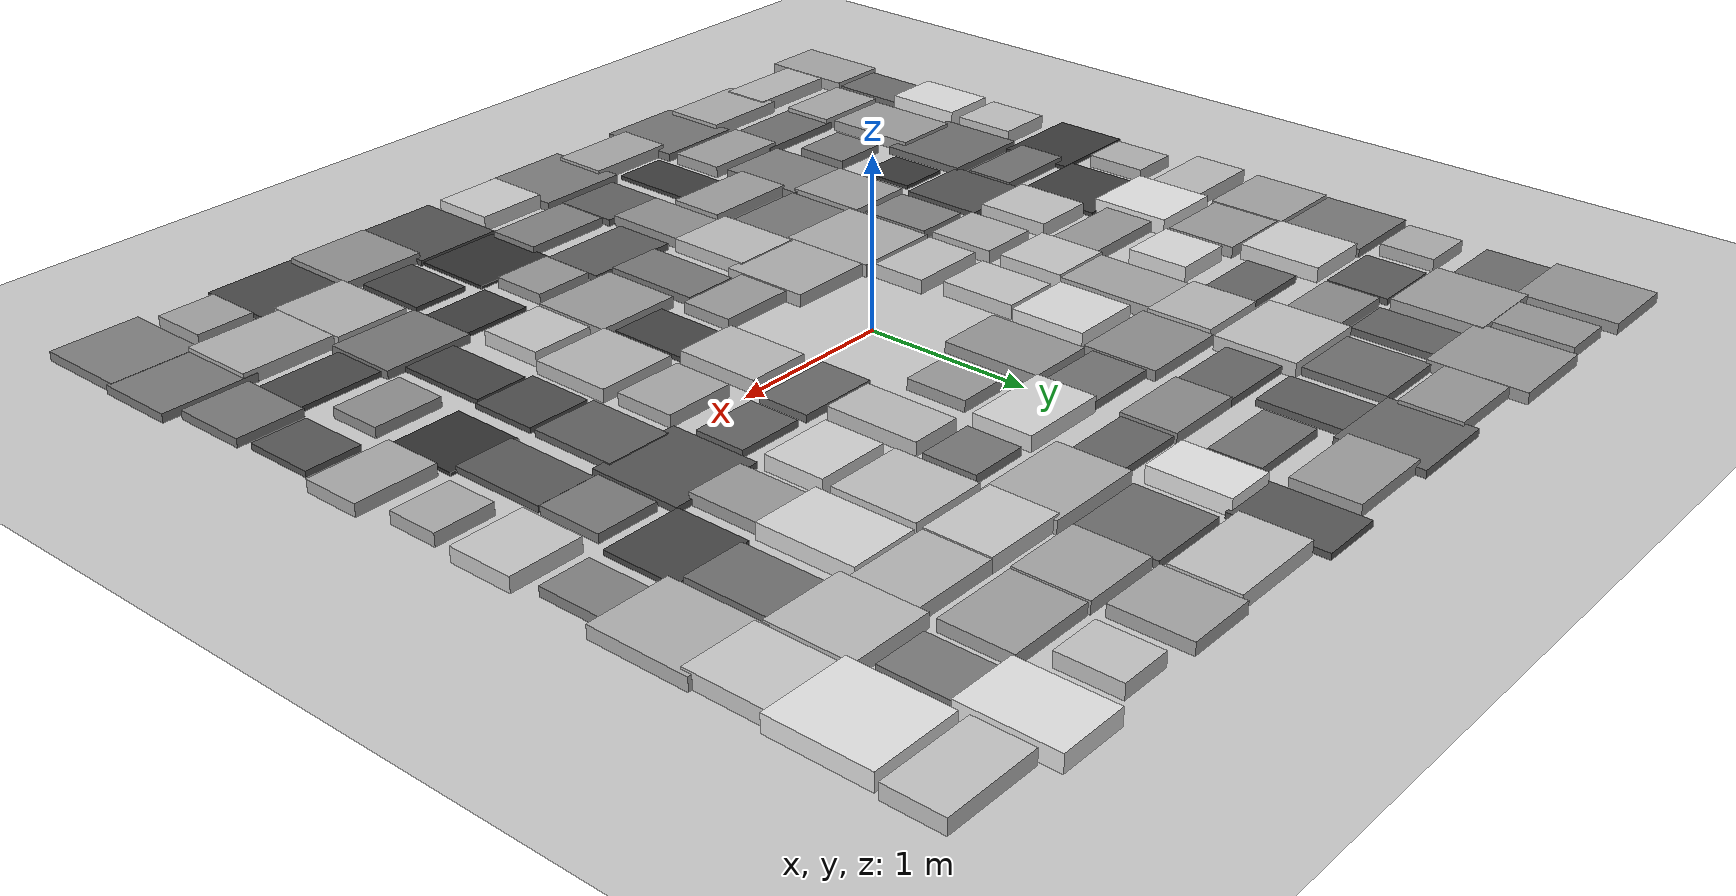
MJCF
<mujoco model="terrain_scene">
  <compiler angle="radian" coordinate="local" inertiafromgeom="true" />
  <option timestep="0.002" gravity="0.0 0.0 -9.81" iterations="50" solver="Newton" />
  <visual>
    <global offwidth="1920" offheight="1080" />
    <quality shadowsize="4096" />
    <headlight ambient="0.4 0.4 0.4" diffuse="0.6 0.6 0.6" />
  </visual>
  <asset>
    <texture name="grid_texture" type="2d" builtin="checker" rgb1="0.9 0.9 0.9" rgb2="0.7 0.7 0.7" width="512" height="512" />
    <material name="grid_material" texture="grid_texture" texrepeat="10 10" reflectance="0.1" />
  </asset>
  <worldbody>
    <geom name="ground" type="plane" size="6.0 6.0 0.1" pos="0 0 0" rgba="0.8 0.8 0.8 1.0" friction="1.0 0.005 0.0001" />
    <geom name="box_0" type="box" size="0.1894 0.2905 0.0362" pos="-2.7500 -2.7500 0.0362" rgba="0.659 0.659 0.659 1.000" friction="1.0 0.005 0.0001" />
    <geom name="box_1" type="box" size="0.1684 0.2747 0.0232" pos="-2.7500 -2.2500 0.0232" rgba="0.430 0.430 0.430 1.000" friction="1.0 0.005 0.0001" />
    <geom name="box_2" type="box" size="0.1769 0.2399 0.0486" pos="-2.7500 -1.7500 0.0486" rgba="0.876 0.876 0.876 1.000" friction="1.0 0.005 0.0001" />
    <geom name="box_3" type="box" size="0.1795 0.1965 0.0420" pos="-2.7500 -1.2500 0.0420" rgba="0.760 0.760 0.760 1.000" friction="1.0 0.005 0.0001" />
    <geom name="box_4" type="box" size="0.2958 0.2251 0.0119" pos="-2.7500 -0.7500 0.0119" rgba="0.234 0.234 0.234 1.000" friction="1.0 0.005 0.0001" />
    <geom name="box_5" type="box" size="0.1521 0.1844 0.0387" pos="-2.7500 -0.2500 0.0387" rgba="0.702 0.702 0.702 1.000" friction="1.0 0.005 0.0001" />
    <geom name="box_6" type="box" size="0.2516 0.1683 0.0408" pos="-2.7500 0.2500 0.0408" rgba="0.740 0.740 0.740 1.000" friction="1.0 0.005 0.0001" />
    <geom name="box_7" type="box" size="0.2541 0.2372 0.0355" pos="-2.7500 0.7500 0.0355" rgba="0.646 0.646 0.646 1.000" friction="1.0 0.005 0.0001" />
    <geom name="box_8" type="box" size="0.2706 0.2573 0.0258" pos="-2.7500 1.2500 0.0258" rgba="0.476 0.476 0.476 1.000" friction="1.0 0.005 0.0001" />
    <geom name="box_9" type="box" size="0.1697 0.1686 0.0376" pos="-2.7500 1.7500 0.0376" rgba="0.682 0.682 0.682 1.000" friction="1.0 0.005 0.0001" />
    <geom name="box_10" type="box" size="0.2096 0.1951 0.0231" pos="-2.7500 2.2500 0.0231" rgba="0.430 0.430 0.430 1.000" friction="1.0 0.005 0.0001" />
    <geom name="box_11" type="box" size="0.2494 0.2933 0.0322" pos="-2.7500 2.7500 0.0322" rgba="0.589 0.589 0.589 1.000" friction="1.0 0.005 0.0001" />
    <geom name="box_12" type="box" size="0.2887 0.1537 0.0402" pos="-2.2500 -2.7500 0.0402" rgba="0.729 0.729 0.729 1.000" friction="1.0 0.005 0.0001" />
    <geom name="box_13" type="box" size="0.2451 0.1659 0.0368" pos="-2.2500 -2.2500 0.0368" rgba="0.669 0.669 0.669 1.000" friction="1.0 0.005 0.0001" />
    <geom name="box_14" type="box" size="0.2129 0.2949 0.0343" pos="-2.2500 -1.7500 0.0343" rgba="0.625 0.625 0.625 1.000" friction="1.0 0.005 0.0001" />
    <geom name="box_15" type="box" size="0.2900 0.2707 0.0237" pos="-2.2500 -1.2500 0.0237" rgba="0.439 0.439 0.439 1.000" friction="1.0 0.005 0.0001" />
    <geom name="box_16" type="box" size="0.2677 0.1527 0.0242" pos="-2.2500 -0.7500 0.0242" rgba="0.449 0.449 0.449 1.000" friction="1.0 0.005 0.0001" />
    <geom name="box_17" type="box" size="0.2744 0.2695 0.0126" pos="-2.2500 -0.2500 0.0126" rgba="0.246 0.246 0.246 1.000" friction="1.0 0.005 0.0001" />
    <geom name="box_18" type="box" size="0.2296 0.2409 0.0497" pos="-2.2500 0.2500 0.0497" rgba="0.895 0.895 0.895 1.000" friction="1.0 0.005 0.0001" />
    <geom name="box_19" type="box" size="0.2405 0.2119 0.0341" pos="-2.2500 0.7500 0.0341" rgba="0.622 0.622 0.622 1.000" friction="1.0 0.005 0.0001" />
    <geom name="box_20" type="box" size="0.2139 0.2478 0.0456" pos="-2.2500 1.2500 0.0456" rgba="0.823 0.823 0.823 1.000" friction="1.0 0.005 0.0001" />
    <geom name="box_21" type="box" size="0.2181 0.1872 0.0194" pos="-2.2500 1.7500 0.0194" rgba="0.364 0.364 0.364 1.000" friction="1.0 0.005 0.0001" />
    <geom name="box_22" type="box" size="0.2619 0.2725 0.0347" pos="-2.2500 2.2500 0.0347" rgba="0.632 0.632 0.632 1.000" friction="1.0 0.005 0.0001" />
    <geom name="box_23" type="box" size="0.1600 0.2392 0.0330" pos="-2.2500 2.7500 0.0330" rgba="0.602 0.602 0.602 1.000" friction="1.0 0.005 0.0001" />
    <geom name="box_24" type="box" size="0.2737 0.1966 0.0376" pos="-1.7500 -2.7500 0.0376" rgba="0.683 0.683 0.683 1.000" friction="1.0 0.005 0.0001" />
    <geom name="box_25" type="box" size="0.2881 0.1748 0.0237" pos="-1.7500 -2.2500 0.0237" rgba="0.439 0.439 0.439 1.000" friction="1.0 0.005 0.0001" />
    <geom name="box_26" type="box" size="0.1730 0.1673 0.0270" pos="-1.7500 -1.7500 0.0270" rgba="0.497 0.497 0.497 1.000" friction="1.0 0.005 0.0001" />
    <geom name="box_27" type="box" size="0.1583 0.1762 0.0117" pos="-1.7500 -1.2500 0.0117" rgba="0.230 0.230 0.230 1.000" friction="1.0 0.005 0.0001" />
    <geom name="box_28" type="box" size="0.2387 0.2521 0.0175" pos="-1.7500 -0.7500 0.0175" rgba="0.331 0.331 0.331 1.000" friction="1.0 0.005 0.0001" />
    <geom name="box_29" type="box" size="0.1977 0.2257 0.0427" pos="-1.7500 -0.2500 0.0427" rgba="0.772 0.772 0.772 1.000" friction="1.0 0.005 0.0001" />
    <geom name="box_30" type="box" size="0.2777 0.1565 0.0332" pos="-1.7500 0.2500 0.0332" rgba="0.606 0.606 0.606 1.000" friction="1.0 0.005 0.0001" />
    <geom name="box_31" type="box" size="0.1855 0.1874 0.0477" pos="-1.7500 0.7500 0.0477" rgba="0.860 0.860 0.860 1.000" friction="1.0 0.005 0.0001" />
    <geom name="box_32" type="box" size="0.2124 0.1574 0.0216" pos="-1.7500 1.2500 0.0216" rgba="0.404 0.404 0.404 1.000" friction="1.0 0.005 0.0001" />
    <geom name="box_33" type="box" size="0.2286 0.1653 0.0302" pos="-1.7500 1.7500 0.0302" rgba="0.554 0.554 0.554 1.000" friction="1.0 0.005 0.0001" />
    <geom name="box_34" type="box" size="0.1578 0.2887 0.0213" pos="-1.7500 2.2500 0.0213" rgba="0.397 0.397 0.397 1.000" friction="1.0 0.005 0.0001" />
    <geom name="box_35" type="box" size="0.2765 0.2854 0.0334" pos="-1.7500 2.7500 0.0334" rgba="0.609 0.609 0.609 1.000" friction="1.0 0.005 0.0001" />
    <geom name="box_36" type="box" size="0.2703 0.2669 0.0252" pos="-1.2500 -2.7500 0.0252" rgba="0.465 0.465 0.465 1.000" friction="1.0 0.005 0.0001" />
    <geom name="box_37" type="box" size="0.2668 0.1702 0.0348" pos="-1.2500 -2.2500 0.0348" rgba="0.634 0.634 0.634 1.000" friction="1.0 0.005 0.0001" />
    <geom name="box_38" type="box" size="0.2271 0.2786 0.0276" pos="-1.2500 -1.7500 0.0276" rgba="0.507 0.507 0.507 1.000" friction="1.0 0.005 0.0001" />
    <geom name="box_39" type="box" size="0.2078 0.2459 0.0348" pos="-1.2500 -1.2500 0.0348" rgba="0.635 0.635 0.635 1.000" friction="1.0 0.005 0.0001" />
    <geom name="box_40" type="box" size="0.1710 0.2217 0.0282" pos="-1.2500 -0.7500 0.0282" rgba="0.519 0.519 0.519 1.000" friction="1.0 0.005 0.0001" />
    <geom name="box_41" type="box" size="0.1849 0.2051 0.0392" pos="-1.2500 -0.2500 0.0392" rgba="0.710 0.710 0.710 1.000" friction="1.0 0.005 0.0001" />
    <geom name="box_42" type="box" size="0.1991 0.2069 0.0435" pos="-1.2500 0.2500 0.0435" rgba="0.787 0.787 0.787 1.000" friction="1.0 0.005 0.0001" />
    <geom name="box_43" type="box" size="0.1945 0.2923 0.0361" pos="-1.2500 0.7500 0.0361" rgba="0.656 0.656 0.656 1.000" friction="1.0 0.005 0.0001" />
    <geom name="box_44" type="box" size="0.2221 0.1993 0.0400" pos="-1.2500 1.2500 0.0400" rgba="0.725 0.725 0.725 1.000" friction="1.0 0.005 0.0001" />
    <geom name="box_45" type="box" size="0.2773 0.2479 0.0423" pos="-1.2500 1.7500 0.0423" rgba="0.765 0.765 0.765 1.000" friction="1.0 0.005 0.0001" />
    <geom name="box_46" type="box" size="0.2299 0.2449 0.0237" pos="-1.2500 2.2500 0.0237" rgba="0.440 0.440 0.440 1.000" friction="1.0 0.005 0.0001" />
    <geom name="box_47" type="box" size="0.2602 0.1804 0.0330" pos="-1.2500 2.7500 0.0330" rgba="0.603 0.603 0.603 1.000" friction="1.0 0.005 0.0001" />
    <geom name="box_48" type="box" size="0.2791 0.1698 0.0365" pos="-0.7500 -2.7500 0.0365" rgba="0.664 0.664 0.664 1.000" friction="1.0 0.005 0.0001" />
    <geom name="box_49" type="box" size="0.1643 0.2589 0.0125" pos="-0.7500 -2.2500 0.0125" rgba="0.243 0.243 0.243 1.000" friction="1.0 0.005 0.0001" />
    <geom name="box_50" type="box" size="0.2904 0.1706 0.0344" pos="-0.7500 -1.7500 0.0344" rgba="0.626 0.626 0.626 1.000" friction="1.0 0.005 0.0001" />
    <geom name="box_51" type="box" size="0.2701 0.2391 0.0256" pos="-0.7500 -1.2500 0.0256" rgba="0.473 0.473 0.473 1.000" friction="1.0 0.005 0.0001" />
    <geom name="box_52" type="box" size="0.2693 0.2919 0.0379" pos="-0.7500 -0.7500 0.0379" rgba="0.689 0.689 0.689 1.000" friction="1.0 0.005 0.0001" />
    <geom name="box_53" type="box" size="0.2385 0.1643 0.0422" pos="-0.7500 -0.2500 0.0422" rgba="0.764 0.764 0.764 1.000" friction="1.0 0.005 0.0001" />
    <geom name="box_54" type="box" size="0.1757 0.2347 0.0434" pos="-0.7500 0.2500 0.0434" rgba="0.784 0.784 0.784 1.000" friction="1.0 0.005 0.0001" />
    <geom name="box_55" type="box" size="0.2199 0.2284 0.0480" pos="-0.7500 0.7500 0.0480" rgba="0.865 0.865 0.865 1.000" friction="1.0 0.005 0.0001" />
    <geom name="box_56" type="box" size="0.2699 0.2238 0.0308" pos="-0.7500 1.2500 0.0308" rgba="0.563 0.563 0.563 1.000" friction="1.0 0.005 0.0001" />
    <geom name="box_57" type="box" size="0.2897 0.1680 0.0218" pos="-0.7500 1.7500 0.0218" rgba="0.406 0.406 0.406 1.000" friction="1.0 0.005 0.0001" />
    <geom name="box_58" type="box" size="0.1632 0.2487 0.0200" pos="-0.7500 2.2500 0.0200" rgba="0.376 0.376 0.376 1.000" friction="1.0 0.005 0.0001" />
    <geom name="box_59" type="box" size="0.2661 0.2507 0.0225" pos="-0.7500 2.7500 0.0225" rgba="0.418 0.418 0.418 1.000" friction="1.0 0.005 0.0001" />
    <geom name="box_60" type="box" size="0.2848 0.2644 0.0268" pos="-0.2500 -2.7500 0.0268" rgba="0.493 0.493 0.493 1.000" friction="1.0 0.005 0.0001" />
    <geom name="box_61" type="box" size="0.2046 0.1972 0.0207" pos="-0.2500 -2.2500 0.0207" rgba="0.388 0.388 0.388 1.000" friction="1.0 0.005 0.0001" />
    <geom name="box_62" type="box" size="0.1722 0.2904 0.0312" pos="-0.2500 -1.7500 0.0312" rgba="0.570 0.570 0.570 1.000" friction="1.0 0.005 0.0001" />
    <geom name="box_63" type="box" size="0.2075 0.2595 0.0413" pos="-0.2500 -1.2500 0.0413" rgba="0.747 0.747 0.747 1.000" friction="1.0 0.005 0.0001" />
    <geom name="box_64" type="box" size="0.2904 0.2670 0.0378" pos="-0.2500 -0.7500 0.0378" rgba="0.686 0.686 0.686 1.000" friction="1.0 0.005 0.0001" />
    <geom name="box_65" type="box" size="0.2065 0.2980 0.0326" pos="-0.2500 0.7500 0.0326" rgba="0.595 0.595 0.595 1.000" friction="1.0 0.005 0.0001" />
    <geom name="box_66" type="box" size="0.2927 0.1678 0.0246" pos="-0.2500 1.2500 0.0246" rgba="0.455 0.455 0.455 1.000" friction="1.0 0.005 0.0001" />
    <geom name="box_67" type="box" size="0.2456 0.1683 0.0300" pos="-0.2500 1.7500 0.0300" rgba="0.551 0.551 0.551 1.000" friction="1.0 0.005 0.0001" />
    <geom name="box_68" type="box" size="0.2529 0.1518 0.0245" pos="-0.2500 2.2500 0.0245" rgba="0.454 0.454 0.454 1.000" friction="1.0 0.005 0.0001" />
    <geom name="box_69" type="box" size="0.2738 0.1943 0.0341" pos="-0.2500 2.7500 0.0341" rgba="0.621 0.621 0.621 1.000" friction="1.0 0.005 0.0001" />
    <geom name="box_70" type="box" size="0.2163 0.1953 0.0445" pos="0.2500 -2.7500 0.0445" rgba="0.804 0.804 0.804 1.000" friction="1.0 0.005 0.0001" />
    <geom name="box_71" type="box" size="0.2672 0.1666 0.0280" pos="0.2500 -2.2500 0.0280" rgba="0.516 0.516 0.516 1.000" friction="1.0 0.005 0.0001" />
    <geom name="box_72" type="box" size="0.2819 0.1926 0.0199" pos="0.2500 -1.7500 0.0199" rgba="0.374 0.374 0.374 1.000" friction="1.0 0.005 0.0001" />
    <geom name="box_73" type="box" size="0.1660 0.2999 0.0257" pos="0.2500 -1.2500 0.0257" rgba="0.474 0.474 0.474 1.000" friction="1.0 0.005 0.0001" />
    <geom name="box_74" type="box" size="0.2475 0.1636 0.0338" pos="0.2500 -0.7500 0.0338" rgba="0.617 0.617 0.617 1.000" friction="1.0 0.005 0.0001" />
    <geom name="box_75" type="box" size="0.1543 0.1861 0.0336" pos="0.2500 0.7500 0.0336" rgba="0.613 0.613 0.613 1.000" friction="1.0 0.005 0.0001" />
    <geom name="box_76" type="box" size="0.2665 0.1797 0.0464" pos="0.2500 1.2500 0.0464" rgba="0.837 0.837 0.837 1.000" friction="1.0 0.005 0.0001" />
    <geom name="box_77" type="box" size="0.2484 0.1554 0.0217" pos="0.2500 1.7500 0.0217" rgba="0.405 0.405 0.405 1.000" friction="1.0 0.005 0.0001" />
    <geom name="box_78" type="box" size="0.1577 0.2409 0.0500" pos="0.2500 2.2500 0.0500" rgba="0.900 0.900 0.900 1.000" friction="1.0 0.005 0.0001" />
    <geom name="box_79" type="box" size="0.1858 0.2774 0.0183" pos="0.2500 2.7500 0.0183" rgba="0.346 0.346 0.346 1.000" friction="1.0 0.005 0.0001" />
    <geom name="box_80" type="box" size="0.2701 0.2892 0.0171" pos="0.7500 -2.7500 0.0171" rgba="0.325 0.325 0.325 1.000" friction="1.0 0.005 0.0001" />
    <geom name="box_81" type="box" size="0.2547 0.2757 0.0100" pos="0.7500 -2.2500 0.0100" rgba="0.200 0.200 0.200 1.000" friction="1.0 0.005 0.0001" />
    <geom name="box_82" type="box" size="0.1803 0.1687 0.0326" pos="0.7500 -1.7500 0.0326" rgba="0.595 0.595 0.595 1.000" friction="1.0 0.005 0.0001" />
    <geom name="box_83" type="box" size="0.2618 0.2445 0.0337" pos="0.7500 -1.2500 0.0337" rgba="0.615 0.615 0.615 1.000" friction="1.0 0.005 0.0001" />
    <geom name="box_84" type="box" size="0.1733 0.2602 0.0141" pos="0.7500 -0.7500 0.0141" rgba="0.271 0.271 0.271 1.000" friction="1.0 0.005 0.0001" />
    <geom name="box_85" type="box" size="0.1906 0.2565 0.0406" pos="0.7500 -0.2500 0.0406" rgba="0.735 0.735 0.735 1.000" friction="1.0 0.005 0.0001" />
    <geom name="box_86" type="box" size="0.2417 0.1582 0.0225" pos="0.7500 0.2500 0.0225" rgba="0.418 0.418 0.418 1.000" friction="1.0 0.005 0.0001" />
    <geom name="box_87" type="box" size="0.1564 0.2826 0.0410" pos="0.7500 0.7500 0.0410" rgba="0.742 0.742 0.742 1.000" friction="1.0 0.005 0.0001" />
    <geom name="box_88" type="box" size="0.1760 0.1638 0.0254" pos="0.7500 1.2500 0.0254" rgba="0.470 0.470 0.470 1.000" friction="1.0 0.005 0.0001" />
    <geom name="box_89" type="box" size="0.2970 0.2188 0.0375" pos="0.7500 1.7500 0.0375" rgba="0.682 0.682 0.682 1.000" friction="1.0 0.005 0.0001" />
    <geom name="box_90" type="box" size="0.2455 0.2359 0.0232" pos="0.7500 2.2500 0.0232" rgba="0.432 0.432 0.432 1.000" friction="1.0 0.005 0.0001" />
    <geom name="box_91" type="box" size="0.2919 0.1952 0.0425" pos="0.7500 2.7500 0.0425" rgba="0.768 0.768 0.768 1.000" friction="1.0 0.005 0.0001" />
    <geom name="box_92" type="box" size="0.2550 0.2474 0.0312" pos="1.2500 -2.7500 0.0312" rgba="0.571 0.571 0.571 1.000" friction="1.0 0.005 0.0001" />
    <geom name="box_93" type="box" size="0.1723 0.2263 0.0148" pos="1.2500 -2.2500 0.0148" rgba="0.283 0.283 0.283 1.000" friction="1.0 0.005 0.0001" />
    <geom name="box_94" type="box" size="0.2211 0.1679 0.0127" pos="1.2500 -1.7500 0.0127" rgba="0.247 0.247 0.247 1.000" friction="1.0 0.005 0.0001" />
    <geom name="box_95" type="box" size="0.1917 0.1957 0.0428" pos="1.2500 -1.2500 0.0428" rgba="0.775 0.775 0.775 1.000" friction="1.0 0.005 0.0001" />
    <geom name="box_96" type="box" size="0.2416 0.2452 0.0395" pos="1.2500 -0.7500 0.0395" rgba="0.717 0.717 0.717 1.000" friction="1.0 0.005 0.0001" />
    <geom name="box_97" type="box" size="0.2113 0.1826 0.0367" pos="1.2500 -0.2500 0.0367" rgba="0.668 0.668 0.668 1.000" friction="1.0 0.005 0.0001" />
    <geom name="box_98" type="box" size="0.1976 0.1554 0.0213" pos="1.2500 0.2500 0.0213" rgba="0.397 0.397 0.397 1.000" friction="1.0 0.005 0.0001" />
    <geom name="box_99" type="box" size="0.2211 0.1838 0.0458" pos="1.2500 0.7500 0.0458" rgba="0.826 0.826 0.826 1.000" friction="1.0 0.005 0.0001" />
    <geom name="box_100" type="box" size="0.2349 0.2553 0.0420" pos="1.2500 1.2500 0.0420" rgba="0.760 0.760 0.760 1.000" friction="1.0 0.005 0.0001" />
    <geom name="box_101" type="box" size="0.2479 0.1974 0.0438" pos="1.2500 1.7500 0.0438" rgba="0.792 0.792 0.792 1.000" friction="1.0 0.005 0.0001" />
    <geom name="box_102" type="box" size="0.2324 0.2147 0.0359" pos="1.2500 2.2500 0.0359" rgba="0.653 0.653 0.653 1.000" friction="1.0 0.005 0.0001" />
    <geom name="box_103" type="box" size="0.2041 0.2269 0.0360" pos="1.2500 2.7500 0.0360" rgba="0.656 0.656 0.656 1.000" friction="1.0 0.005 0.0001" />
    <geom name="box_104" type="box" size="0.2830 0.2882 0.0149" pos="1.7500 -2.7500 0.0149" rgba="0.286 0.286 0.286 1.000" friction="1.0 0.005 0.0001" />
    <geom name="box_105" type="box" size="0.2280 0.2700 0.0388" pos="1.7500 -2.2500 0.0388" rgba="0.704 0.704 0.704 1.000" friction="1.0 0.005 0.0001" />
    <geom name="box_106" type="box" size="0.2756 0.2241 0.0254" pos="1.7500 -1.7500 0.0254" rgba="0.469 0.469 0.469 1.000" friction="1.0 0.005 0.0001" />
    <geom name="box_107" type="box" size="0.1608 0.2763 0.0144" pos="1.7500 -1.2500 0.0144" rgba="0.277 0.277 0.277 1.000" friction="1.0 0.005 0.0001" />
    <geom name="box_108" type="box" size="0.1921 0.2001 0.0160" pos="1.7500 -0.7500 0.0160" rgba="0.305 0.305 0.305 1.000" friction="1.0 0.005 0.0001" />
    <geom name="box_109" type="box" size="0.1971 0.2614 0.0204" pos="1.7500 -0.2500 0.0204" rgba="0.382 0.382 0.382 1.000" friction="1.0 0.005 0.0001" />
    <geom name="box_110" type="box" size="0.2741 0.2785 0.0176" pos="1.7500 0.2500 0.0176" rgba="0.333 0.333 0.333 1.000" friction="1.0 0.005 0.0001" />
    <geom name="box_111" type="box" size="0.1730 0.2401 0.0335" pos="1.7500 0.7500 0.0335" rgba="0.611 0.611 0.611 1.000" friction="1.0 0.005 0.0001" />
    <geom name="box_112" type="box" size="0.2047 0.2938 0.0470" pos="1.7500 1.2500 0.0470" rgba="0.847 0.847 0.847 1.000" friction="1.0 0.005 0.0001" />
    <geom name="box_113" type="box" size="0.2658 0.1966 0.0397" pos="1.7500 1.7500 0.0397" rgba="0.719 0.719 0.719 1.000" friction="1.0 0.005 0.0001" />
    <geom name="box_114" type="box" size="0.2558 0.2082 0.0348" pos="1.7500 2.2500 0.0348" rgba="0.634 0.634 0.634 1.000" friction="1.0 0.005 0.0001" />
    <geom name="box_115" type="box" size="0.1516 0.1814 0.0428" pos="1.7500 2.7500 0.0428" rgba="0.775 0.775 0.775 1.000" friction="1.0 0.005 0.0001" />
    <geom name="box_116" type="box" size="0.1746 0.1749 0.0351" pos="2.2500 -2.7500 0.0351" rgba="0.639 0.639 0.639 1.000" friction="1.0 0.005 0.0001" />
    <geom name="box_117" type="box" size="0.2984 0.2334 0.0384" pos="2.2500 -2.2500 0.0384" rgba="0.696 0.696 0.696 1.000" friction="1.0 0.005 0.0001" />
    <geom name="box_118" type="box" size="0.2985 0.1712 0.0151" pos="2.2500 -1.7500 0.0151" rgba="0.290 0.290 0.290 1.000" friction="1.0 0.005 0.0001" />
    <geom name="box_119" type="box" size="0.2089 0.1620 0.0307" pos="2.2500 -1.2500 0.0307" rgba="0.562 0.562 0.562 1.000" friction="1.0 0.005 0.0001" />
    <geom name="box_120" type="box" size="0.2151 0.2204 0.0100" pos="2.2500 -0.7500 0.0100" rgba="0.200 0.200 0.200 1.000" friction="1.0 0.005 0.0001" />
    <geom name="box_121" type="box" size="0.1771 0.2861 0.0192" pos="2.2500 -0.2500 0.0192" rgba="0.361 0.361 0.361 1.000" friction="1.0 0.005 0.0001" />
    <geom name="box_122" type="box" size="0.1849 0.1938 0.0263" pos="2.2500 0.2500 0.0263" rgba="0.485 0.485 0.485 1.000" friction="1.0 0.005 0.0001" />
    <geom name="box_123" type="box" size="0.2380 0.2240 0.0145" pos="2.2500 0.7500 0.0145" rgba="0.279 0.279 0.279 1.000" friction="1.0 0.005 0.0001" />
    <geom name="box_124" type="box" size="0.1866 0.2765 0.0239" pos="2.2500 1.2500 0.0239" rgba="0.443 0.443 0.443 1.000" friction="1.0 0.005 0.0001" />
    <geom name="box_125" type="box" size="0.2474 0.2505 0.0408" pos="2.2500 1.7500 0.0408" rgba="0.739 0.739 0.739 1.000" friction="1.0 0.005 0.0001" />
    <geom name="box_126" type="box" size="0.1587 0.2050 0.0262" pos="2.2500 2.2500 0.0262" rgba="0.484 0.484 0.484 1.000" friction="1.0 0.005 0.0001" />
    <geom name="box_127" type="box" size="0.2008 0.2767 0.0497" pos="2.2500 2.7500 0.0497" rgba="0.894 0.894 0.894 1.000" friction="1.0 0.005 0.0001" />
    <geom name="box_128" type="box" size="0.2653 0.2778 0.0274" pos="2.7500 -2.7500 0.0274" rgba="0.504 0.504 0.504 1.000" friction="1.0 0.005 0.0001" />
    <geom name="box_129" type="box" size="0.2864 0.2381 0.0262" pos="2.7500 -2.2500 0.0262" rgba="0.484 0.484 0.484 1.000" friction="1.0 0.005 0.0001" />
    <geom name="box_130" type="box" size="0.2011 0.2248 0.0259" pos="2.7500 -1.7500 0.0259" rgba="0.478 0.478 0.478 1.000" friction="1.0 0.005 0.0001" />
    <geom name="box_131" type="box" size="0.1657 0.2098 0.0183" pos="2.7500 -1.2500 0.0183" rgba="0.346 0.346 0.346 1.000" friction="1.0 0.005 0.0001" />
    <geom name="box_132" type="box" size="0.2446 0.1766 0.0367" pos="2.7500 -0.7500 0.0367" rgba="0.667 0.667 0.667 1.000" friction="1.0 0.005 0.0001" />
    <geom name="box_133" type="box" size="0.1787 0.1537 0.0373" pos="2.7500 -0.2500 0.0373" rgba="0.678 0.678 0.678 1.000" friction="1.0 0.005 0.0001" />
    <geom name="box_134" type="box" size="0.2172 0.1961 0.0436" pos="2.7500 0.2500 0.0436" rgba="0.788 0.788 0.788 1.000" friction="1.0 0.005 0.0001" />
    <geom name="box_135" type="box" size="0.1511 0.1917 0.0278" pos="2.7500 0.7500 0.0278" rgba="0.512 0.512 0.512 1.000" friction="1.0 0.005 0.0001" />
    <geom name="box_136" type="box" size="0.2451 0.2973 0.0383" pos="2.7500 1.2500 0.0383" rgba="0.696 0.696 0.696 1.000" friction="1.0 0.005 0.0001" />
    <geom name="box_137" type="box" size="0.2216 0.2642 0.0443" pos="2.7500 1.7500 0.0443" rgba="0.799 0.799 0.799 1.000" friction="1.0 0.005 0.0001" />
    <geom name="box_138" type="box" size="0.2581 0.2945 0.0500" pos="2.7500 2.2500 0.0500" rgba="0.900 0.900 0.900 1.000" friction="1.0 0.005 0.0001" />
    <geom name="box_139" type="box" size="0.2800 0.1671 0.0431" pos="2.7500 2.7500 0.0431" rgba="0.779 0.779 0.779 1.000" friction="1.0 0.005 0.0001" />
    <light name="main_light" pos="0 0 5" dir="0 0 -1" diffuse="0.6 0.6 0.6" specular="0.3 0.3 0.3" castshadow="true" />
    <camera name="track_cam" mode="trackcom" pos="3.0 0 2" xyaxes="0 1 0 -0.5 0 1" />
    <camera name="overview" pos="5 5 8" quat="0.5 0.5 -0.5 -0.5" />
  </worldbody>
</mujoco>
